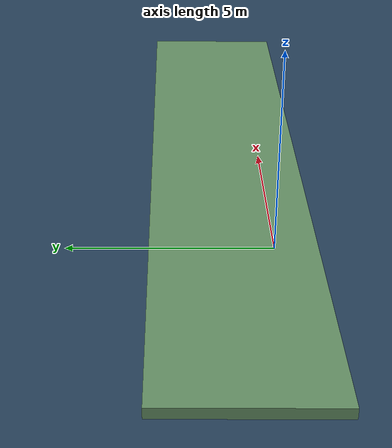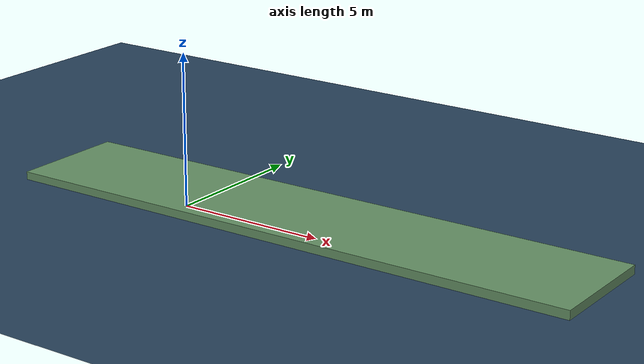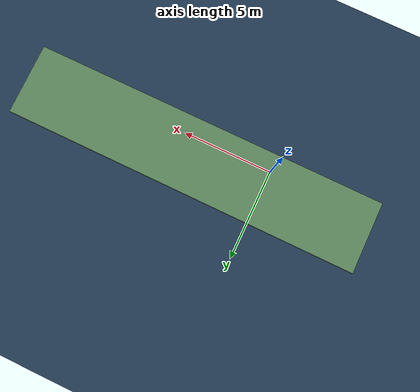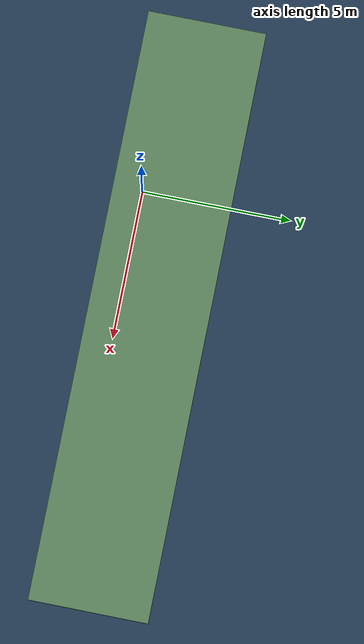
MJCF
<mujoco model="flat">
  <statistic center="0 0 0.55" extent="1.1"/>

  <visual>
    <headlight diffuse="0.6 0.6 0.6" ambient="0.3 0.3 0.3" specular="0 0 0"/>
    <rgba haze="0.15 0.25 0.35 1"/>
    <global azimuth="150" elevation="-20"/>
  </visual>
  <visual>
    <rgba com="0.502 1.0 0 0.5" contactforce="0.98 0.4 0.4 1" contactpoint="1.0 1.0 0.6 0.4"/>
    <scale com="1" forcewidth="0.03" contactwidth="0.01" contactheight="0.02" framewidth="0.05" framelength="0.6"/>
    <map force="0.005"/>
  </visual>
  <asset>
    <texture name="skybox" type="skybox" builtin="gradient" rgb1="0.2 0.3 0.4" rgb2="0 0 0" width="1000" height="1000" mark="random" random="0.001" markrgb="1 1 1"/>
    <texture type="2d" name="groundplane" builtin="checker" mark="edge" rgb1="0.2 0.3 0.4" rgb2="0.1 0.2 0.3" markrgb="0.8 0.8 0.8" width="1000" height="1000"/>
    <material name="groundplane" texture="groundplane" texuniform="true" texrepeat="5 5" reflectance="0.2"/>
  </asset>

  <worldbody>
    <light pos="0 0 10" dir="0 0 -1" directional="true"/>
    <geom name="floor" size="0 3 .125" type="plane" material="groundplane" conaffinity="7" condim="3" friction="1"/>
    <body name="box" pos="2 1 0">
      <geom type="box" size="10 2 0.2588" euler="0 -0.09 0" pos="2 0 0" rgba="0.39 0.56 0.39 1" conaffinity="15" condim="3"/>
    </body>
  </worldbody>
</mujoco>
